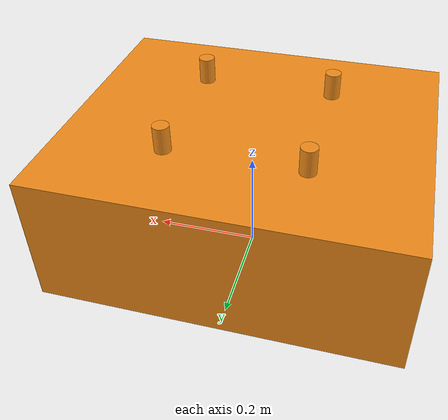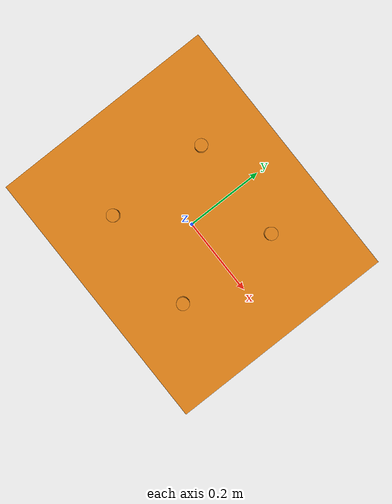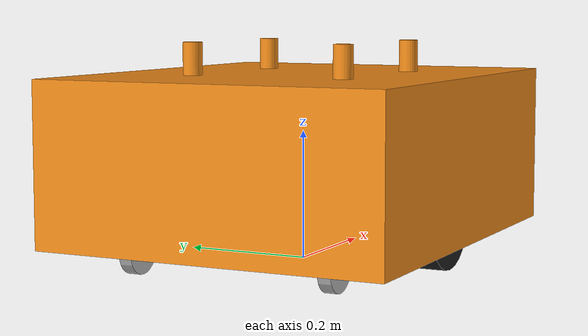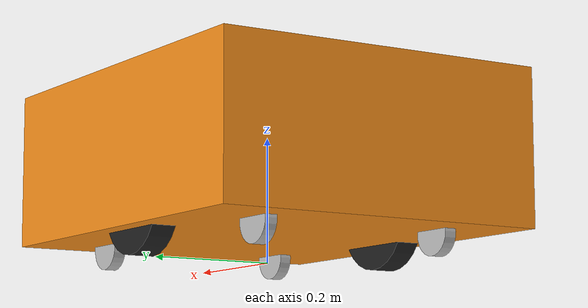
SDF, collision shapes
<sdf version='1.7'>
  <model name='xxx'>
    <link name='base_footprint'>
      <inertial>
        <pose>0.0002 0.0001 0.1649 0 -0 0</pose>
        <mass>40</mass>
        <inertia>
          <ixx>1.79367</ixx>
          <ixy>0</ixy>
          <ixz>0</ixz>
          <iyy>1.28667</iyy>
          <iyz>0</iyz>
          <izz>2.30967</izz>
        </inertia>
      </inertial>
      <collision name='base_footprint_fixed_joint_lump__base_link_collision'>
        <pose>0 0 0.165 0 -0 0</pose>
        <geometry>
          <box>
            <size>0.65 0.55 0.25</size>
          </box>
        </geometry>
        <surface>
          <contact>
            <ode/>
          </contact>
          <friction>
            <ode>
              <mu>0</mu>
              <mu2>0</mu2>
            </ode>
          </friction>
        </surface>
      </collision>
      <collision name='base_footprint_fixed_joint_lump__back_left_pole_collision_1'>
        <pose>-0.125 0.125 0.315 0 -0 0</pose>
        <geometry>
          <cylinder>
            <length>0.05</length>
            <radius>0.015</radius>
          </cylinder>
        </geometry>
        <surface>
          <contact>
            <ode/>
          </contact>
          <friction>
            <ode/>
          </friction>
        </surface>
      </collision>
      <collision name='base_footprint_fixed_joint_lump__back_right_pole_collision_2'>
        <pose>-0.125 -0.125 0.315 0 -0 0</pose>
        <geometry>
          <cylinder>
            <length>0.05</length>
            <radius>0.015</radius>
          </cylinder>
        </geometry>
        <surface>
          <contact>
            <ode/>
          </contact>
          <friction>
            <ode/>
          </friction>
        </surface>
      </collision>
      <collision name='base_footprint_fixed_joint_lump__front_left_pole_collision_3'>
        <pose>0.125 0.125 0.315 0 -0 0</pose>
        <geometry>
          <cylinder>
            <length>0.05</length>
            <radius>0.015</radius>
          </cylinder>
        </geometry>
        <surface>
          <contact>
            <ode/>
          </contact>
          <friction>
            <ode/>
          </friction>
        </surface>
      </collision>
      <collision name='base_footprint_fixed_joint_lump__front_right_pole_collision_4'>
        <pose>0.125 -0.125 0.315 0 -0 0</pose>
        <geometry>
          <cylinder>
            <length>0.05</length>
            <radius>0.015</radius>
          </cylinder>
        </geometry>
        <surface>
          <contact>
            <ode/>
          </contact>
          <friction>
            <ode/>
          </friction>
        </surface>
      </collision>
      <visual name='base_footprint_fixed_joint_lump__base_link_visual'>
        <pose>0 0 0.147 0 -0 1.5708</pose>
        <geometry>
          <mesh>
            <scale>1 1 1</scale>
            <uri>model://xxx_description/meshes/coconut.stl</uri>
          </mesh>
        </geometry>
        <material>
          <script>
            <name>Gazebo/Orange</name>
            <uri>file://media/materials/scripts/gazebo.material</uri>
          </script>
        </material>
      </visual>
      <visual name='base_footprint_fixed_joint_lump__back_left_pole_visual_1'>
        <pose>-0.125 0.125 0.315 0 -0 0</pose>
        <geometry>
          <cylinder>
            <length>0.05</length>
            <radius>0.015</radius>
          </cylinder>
        </geometry>
        <material>
          <script>
            <name>Gazebo/Orange</name>
            <uri>file://media/materials/scripts/gazebo.material</uri>
          </script>
        </material>
      </visual>
      <visual name='base_footprint_fixed_joint_lump__back_right_pole_visual_2'>
        <pose>-0.125 -0.125 0.315 0 -0 0</pose>
        <geometry>
          <cylinder>
            <length>0.05</length>
            <radius>0.015</radius>
          </cylinder>
        </geometry>
        <material>
          <script>
            <name>Gazebo/Orange</name>
            <uri>file://media/materials/scripts/gazebo.material</uri>
          </script>
        </material>
      </visual>
      <visual name='base_footprint_fixed_joint_lump__camera_visual_3'>
        <pose>0.317 0 0.265 0 -0 0</pose>
        <geometry>
          <box>
            <size>0.025 0.09 0.025</size>
          </box>
        </geometry>
      </visual>
      <visual name='base_footprint_fixed_joint_lump__front_left_pole_visual_4'>
        <pose>0.125 0.125 0.315 0 -0 0</pose>
        <geometry>
          <cylinder>
            <length>0.05</length>
            <radius>0.015</radius>
          </cylinder>
        </geometry>
        <material>
          <script>
            <name>Gazebo/Orange</name>
            <uri>file://media/materials/scripts/gazebo.material</uri>
          </script>
        </material>
      </visual>
      <visual name='base_footprint_fixed_joint_lump__front_right_pole_visual_5'>
        <pose>0.125 -0.125 0.315 0 -0 0</pose>
        <geometry>
          <cylinder>
            <length>0.05</length>
            <radius>0.015</radius>
          </cylinder>
        </geometry>
        <material>
          <script>
            <name>Gazebo/Orange</name>
            <uri>file://media/materials/scripts/gazebo.material</uri>
          </script>
        </material>
      </visual>
      <visual name='base_footprint_fixed_joint_lump__lidar_visual_6'>
        <pose>0.22 0 0.31 0 -0 0</pose>
        <geometry>
          <cylinder>
            <length>0.04</length>
            <radius>0.035</radius>
          </cylinder>
        </geometry>
      </visual>
      <visual name='base_footprint_fixed_joint_lump__t265_visual_7'>
        <pose>-0.3195 -0.0081 0.335 0 -0 3.14159</pose>
        <geometry>
          <box>
            <size>0.025 0.09 0.025</size>
          </box>
        </geometry>
      </visual>
      <visual name='base_footprint_fixed_joint_lump__ultrasonic1_visual_8'>
        <pose>0.32 0.22 0.165 0 -0 0.087</pose>
        <geometry>
          <sphere>
            <radius>0.01</radius>
          </sphere>
        </geometry>
      </visual>
      <visual name='base_footprint_fixed_joint_lump__ultrasonic2_visual_9'>
        <pose>0.32 0.15 0.165 0 -0 0</pose>
        <geometry>
          <sphere>
            <radius>0.01</radius>
          </sphere>
        </geometry>
      </visual>
      <visual name='base_footprint_fixed_joint_lump__ultrasonic3_visual_10'>
        <pose>0.32 -0.15 0.165 0 -0 0</pose>
        <geometry>
          <sphere>
            <radius>0.01</radius>
          </sphere>
        </geometry>
      </visual>
      <visual name='base_footprint_fixed_joint_lump__ultrasonic4_visual_11'>
        <pose>0.32 -0.22 0.165 0 0 -0.087</pose>
        <geometry>
          <sphere>
            <radius>0.01</radius>
          </sphere>
        </geometry>
      </visual>
      <visual name='base_footprint_fixed_joint_lump__ultrasonic5_visual_12'>
        <pose>-0.29 -0.23 0.165 0 0 -2.71319</pose>
        <geometry>
          <sphere>
            <radius>0.01</radius>
          </sphere>
        </geometry>
      </visual>
      <visual name='base_footprint_fixed_joint_lump__ultrasonic6_visual_13'>
        <pose>-0.31 -0.17 0.165 0 0 -3.05319</pose>
        <geometry>
          <sphere>
            <radius>0.01</radius>
          </sphere>
        </geometry>
      </visual>
      <visual name='base_footprint_fixed_joint_lump__ultrasonic7_visual_14'>
        <pose>-0.31 0.17 0.165 0 -0 3.05</pose>
        <geometry>
          <sphere>
            <radius>0.01</radius>
          </sphere>
        </geometry>
      </visual>
      <visual name='base_footprint_fixed_joint_lump__ultrasonic8_visual_15'>
        <pose>-0.29 0.23 0.165 0 -0 2.7</pose>
        <geometry>
          <sphere>
            <radius>0.01</radius>
          </sphere>
        </geometry>
      </visual>
    </link>
    <joint name='left_front_castor_joint' type='revolute'>
      <pose relative_to='base_footprint'>0.23 -0.16 0.035 0 -0 0</pose>
      <parent>base_footprint</parent>
      <child>left_front_castor</child>
      <axis>
        <xyz>0 1 0</xyz>
        <limit>
          <lower>-1e+16</lower>
          <upper>1e+16</upper>
        </limit>
        <dynamics>
          <spring_reference>0</spring_reference>
          <spring_stiffness>0</spring_stiffness>
        </dynamics>
      </axis>
    </joint>
    <link name='left_front_castor'>
      <pose relative_to='left_front_castor_joint'>0 0 0 0 -0 0</pose>
      <inertial>
        <pose>0 0 0 0 -0 0</pose>
        <mass>0.2</mass>
        <inertia>
          <ixx>4.437e-05</ixx>
          <ixy>0</ixy>
          <ixz>0</ixz>
          <iyy>4.437e-05</iyy>
          <iyz>0</iyz>
          <izz>0.00047625</izz>
        </inertia>
      </inertial>
      <collision name='left_front_castor_collision'>
        <pose>0 0 0 1.5708 -0 0</pose>
        <geometry>
          <cylinder>
            <length>0.02</length>
            <radius>0.035</radius>
          </cylinder>
        </geometry>
      </collision>
      <visual name='left_front_castor_visual'>
        <pose>0 0 0 1.5708 -0 0</pose>
        <geometry>
          <cylinder>
            <length>0.02</length>
            <radius>0.035</radius>
          </cylinder>
        </geometry>
      </visual>
    </link>
    <joint name='left_rear_castor_joint' type='revolute'>
      <pose relative_to='base_footprint'>-0.23 -0.16 0.035 0 -0 0</pose>
      <parent>base_footprint</parent>
      <child>left_rear_castor</child>
      <axis>
        <xyz>0 1 0</xyz>
        <limit>
          <lower>-1e+16</lower>
          <upper>1e+16</upper>
        </limit>
        <dynamics>
          <spring_reference>0</spring_reference>
          <spring_stiffness>0</spring_stiffness>
        </dynamics>
      </axis>
    </joint>
    <link name='left_rear_castor'>
      <pose relative_to='left_rear_castor_joint'>0 0 0 0 -0 0</pose>
      <inertial>
        <pose>0 0 0 0 -0 0</pose>
        <mass>0.2</mass>
        <inertia>
          <ixx>4.437e-05</ixx>
          <ixy>0</ixy>
          <ixz>0</ixz>
          <iyy>4.437e-05</iyy>
          <iyz>0</iyz>
          <izz>0.00047625</izz>
        </inertia>
      </inertial>
      <collision name='left_rear_castor_collision'>
        <pose>0 0 0 1.5708 -0 0</pose>
        <geometry>
          <cylinder>
            <length>0.02</length>
            <radius>0.035</radius>
          </cylinder>
        </geometry>
      </collision>
      <visual name='left_rear_castor_visual'>
        <pose>0 0 0 1.5708 -0 0</pose>
        <geometry>
          <cylinder>
            <length>0.02</length>
            <radius>0.035</radius>
          </cylinder>
        </geometry>
      </visual>
    </link>
    <joint name='left_wheel_joint' type='revolute'>
      <pose relative_to='base_footprint'>0 0.225 0.08 0 -0 0</pose>
      <parent>base_footprint</parent>
      <child>left_wheel</child>
      <axis>
        <xyz>0 1 0</xyz>
        <limit>
          <effort>300</effort>
          <velocity>300</velocity>
          <lower>-1e+16</lower>
          <upper>1e+16</upper>
        </limit>
        <dynamics>
          <damping>0</damping>
          <friction>0</friction>
          <spring_reference>0</spring_reference>
          <spring_stiffness>0</spring_stiffness>
        </dynamics>
      </axis>
    </joint>
    <link name='left_wheel'>
      <pose relative_to='left_wheel_joint'>0 0 0 0 -0 0</pose>
      <inertial>
        <pose>0 0 0 0 -0 0</pose>
        <mass>2.9</mass>
        <inertia>
          <ixx>0.00564437</ixx>
          <ixy>0</ixy>
          <ixz>0</ixz>
          <iyy>0.00564437</iyy>
          <iyz>0</iyz>
          <izz>0.0104762</izz>
        </inertia>
      </inertial>
      <collision name='left_wheel_collision'>
        <pose>0 0 0 1.5708 -0 0</pose>
        <geometry>
          <cylinder>
            <length>0.04</length>
            <radius>0.08</radius>
          </cylinder>
        </geometry>
        <surface>
          <contact>
            <ode/>
          </contact>
          <friction>
            <ode>
              <mu>100</mu>
              <mu2>100</mu2>
            </ode>
          </friction>
        </surface>
      </collision>
      <visual name='left_wheel_visual'>
        <pose>0 0 0 1.5708 -0 0</pose>
        <geometry>
          <cylinder>
            <length>0.04</length>
            <radius>0.08</radius>
          </cylinder>
        </geometry>
        <material>
          <script>
            <name>Gazebo/Black</name>
            <uri>file://media/materials/scripts/gazebo.material</uri>
          </script>
        </material>
      </visual>
    </link>
    <joint name='right_front_castor_joint' type='revolute'>
      <pose relative_to='base_footprint'>0.23 0.16 0.035 0 -0 0</pose>
      <parent>base_footprint</parent>
      <child>right_front_castor</child>
      <axis>
        <xyz>0 1 0</xyz>
        <limit>
          <lower>-1e+16</lower>
          <upper>1e+16</upper>
        </limit>
        <dynamics>
          <spring_reference>0</spring_reference>
          <spring_stiffness>0</spring_stiffness>
        </dynamics>
      </axis>
    </joint>
    <link name='right_front_castor'>
      <pose relative_to='right_front_castor_joint'>0 0 0 0 -0 0</pose>
      <inertial>
        <pose>0 0 0 0 -0 0</pose>
        <mass>0.2</mass>
        <inertia>
          <ixx>4.437e-05</ixx>
          <ixy>0</ixy>
          <ixz>0</ixz>
          <iyy>4.437e-05</iyy>
          <iyz>0</iyz>
          <izz>0.00047625</izz>
        </inertia>
      </inertial>
      <collision name='right_front_castor_collision'>
        <pose>0 0 0 1.5708 -0 0</pose>
        <geometry>
          <cylinder>
            <length>0.02</length>
            <radius>0.035</radius>
          </cylinder>
        </geometry>
      </collision>
      <visual name='right_front_castor_visual'>
        <pose>0 0 0 1.5708 -0 0</pose>
        <geometry>
          <cylinder>
            <length>0.02</length>
            <radius>0.035</radius>
          </cylinder>
        </geometry>
      </visual>
    </link>
    <joint name='right_rear_castor_joint' type='revolute'>
      <pose relative_to='base_footprint'>-0.23 0.16 0.035 0 -0 0</pose>
      <parent>base_footprint</parent>
      <child>right_rear_castor</child>
      <axis>
        <xyz>0 1 0</xyz>
        <limit>
          <lower>-1e+16</lower>
          <upper>1e+16</upper>
        </limit>
        <dynamics>
          <spring_reference>0</spring_reference>
          <spring_stiffness>0</spring_stiffness>
        </dynamics>
      </axis>
    </joint>
    <link name='right_rear_castor'>
      <pose relative_to='right_rear_castor_joint'>0 0 0 0 -0 0</pose>
      <inertial>
        <pose>0 0 0 0 -0 0</pose>
        <mass>0.2</mass>
        <inertia>
          <ixx>4.437e-05</ixx>
          <ixy>0</ixy>
          <ixz>0</ixz>
          <iyy>4.437e-05</iyy>
          <iyz>0</iyz>
          <izz>0.00047625</izz>
        </inertia>
      </inertial>
      <collision name='right_rear_castor_collision'>
        <pose>0 0 0 1.5708 -0 0</pose>
        <geometry>
          <cylinder>
            <length>0.02</length>
            <radius>0.035</radius>
          </cylinder>
        </geometry>
      </collision>
      <visual name='right_rear_castor_visual'>
        <pose>0 0 0 1.5708 -0 0</pose>
        <geometry>
          <cylinder>
            <length>0.02</length>
            <radius>0.035</radius>
          </cylinder>
        </geometry>
      </visual>
    </link>
    <joint name='right_wheel_joint' type='revolute'>
      <pose relative_to='base_footprint'>0 -0.225 0.08 0 -0 0</pose>
      <parent>base_footprint</parent>
      <child>right_wheel</child>
      <axis>
        <xyz>0 1 0</xyz>
        <limit>
          <effort>300</effort>
          <velocity>300</velocity>
          <lower>-1e+16</lower>
          <upper>1e+16</upper>
        </limit>
        <dynamics>
          <damping>0</damping>
          <friction>0</friction>
          <spring_reference>0</spring_reference>
          <spring_stiffness>0</spring_stiffness>
        </dynamics>
      </axis>
    </joint>
    <link name='right_wheel'>
      <pose relative_to='right_wheel_joint'>0 0 0 0 -0 0</pose>
      <inertial>
        <pose>0 0 0 0 -0 0</pose>
        <mass>2.9</mass>
        <inertia>
          <ixx>0.00564437</ixx>
          <ixy>0</ixy>
          <ixz>0</ixz>
          <iyy>0.00564437</iyy>
          <iyz>0</iyz>
          <izz>0.0104762</izz>
        </inertia>
      </inertial>
      <collision name='right_wheel_collision'>
        <pose>0 0 0 1.5708 -0 0</pose>
        <geometry>
          <cylinder>
            <length>0.04</length>
            <radius>0.08</radius>
          </cylinder>
        </geometry>
        <surface>
          <contact>
            <ode/>
          </contact>
          <friction>
            <ode>
              <mu>100</mu>
              <mu2>100</mu2>
            </ode>
          </friction>
        </surface>
      </collision>
      <visual name='right_wheel_visual'>
        <pose>0 0 0 1.5708 -0 0</pose>
        <geometry>
          <cylinder>
            <length>0.04</length>
            <radius>0.08</radius>
          </cylinder>
        </geometry>
        <material>
          <script>
            <name>Gazebo/Black</name>
            <uri>file://media/materials/scripts/gazebo.material</uri>
          </script>
        </material>
      </visual>
    </link>
    <static>0</static>
    <plugin name='gazebo_ros_control' filename='libgazebo_ros_control.so'>
      <robotNamespace>xxx</robotNamespace>
    </plugin>
  </model>
</sdf>
